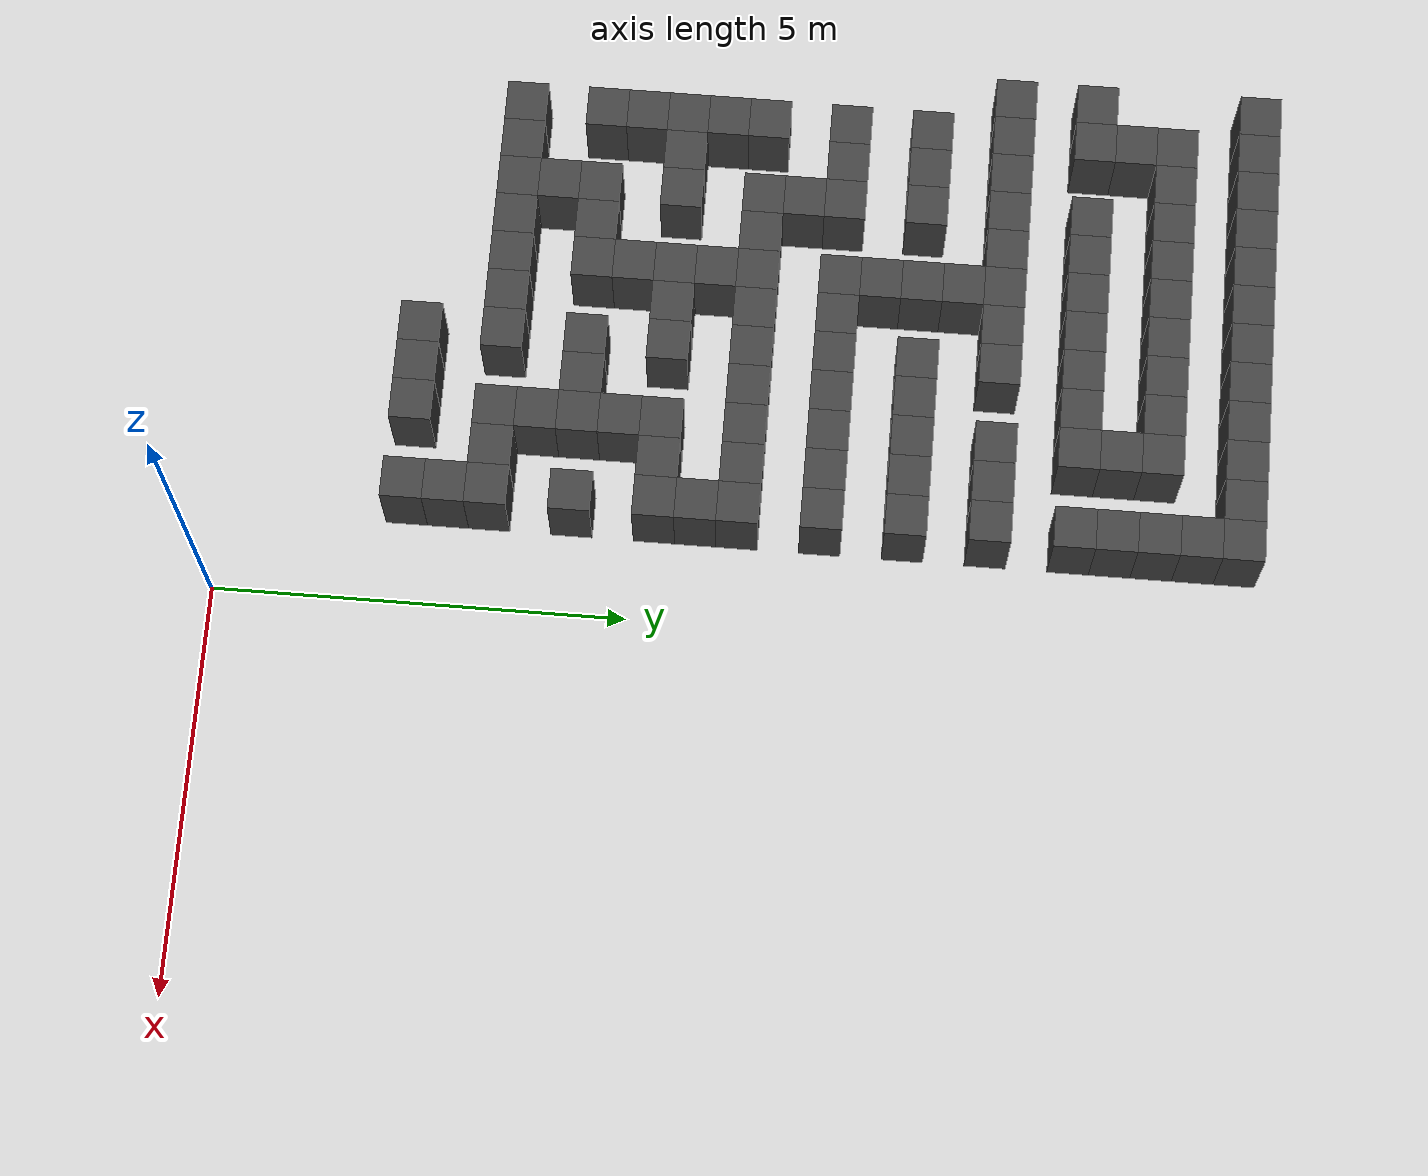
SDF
<sdf version="1.7">
 <world name="map_18914">
  <model name="ground_plane">
   <static>true</static>
   <link name="link">
    <collision name="collision">
     <geometry><plane><normal>0 0 1</normal><size>200 200</size></plane></geometry>
    </collision>
    <visual name="visual">
     <geometry><plane><normal>0 0 1</normal><size>200 200</size></plane></geometry>
     <material><ambient>0.8 0.8 0.8 1</ambient><diffuse>0.8 0.8 0.8 1</diffuse></material>
    </visual>
   </link>
  </model>
  <model name="maze_environment">
   <static>true</static>
   <link name="wall_11">
    <pose>-6.750 12.250 0.500 0 0 0</pose>
    <collision name="col"><geometry><box><size>0.5 0.5 1.0</size></box></geometry></collision>
    <visual name="vis">
     <geometry><box><size>0.5 0.5 1.0</size></box></geometry>
     <material><ambient>0.15 0.15 0.15 1</ambient><diffuse>0.25 0.25 0.25 1</diffuse></material>
    </visual>
   </link>
   <link name="wall_12">
    <pose>-6.250 12.250 0.500 0 0 0</pose>
    <collision name="col"><geometry><box><size>0.5 0.5 1.0</size></box></geometry></collision>
    <visual name="vis">
     <geometry><box><size>0.5 0.5 1.0</size></box></geometry>
     <material><ambient>0.15 0.15 0.15 1</ambient><diffuse>0.25 0.25 0.25 1</diffuse></material>
    </visual>
   </link>
   <link name="wall_13">
    <pose>-5.750 12.250 0.500 0 0 0</pose>
    <collision name="col"><geometry><box><size>0.5 0.5 1.0</size></box></geometry></collision>
    <visual name="vis">
     <geometry><box><size>0.5 0.5 1.0</size></box></geometry>
     <material><ambient>0.15 0.15 0.15 1</ambient><diffuse>0.25 0.25 0.25 1</diffuse></material>
    </visual>
   </link>
   <link name="wall_14">
    <pose>-5.250 12.250 0.500 0 0 0</pose>
    <collision name="col"><geometry><box><size>0.5 0.5 1.0</size></box></geometry></collision>
    <visual name="vis">
     <geometry><box><size>0.5 0.5 1.0</size></box></geometry>
     <material><ambient>0.15 0.15 0.15 1</ambient><diffuse>0.25 0.25 0.25 1</diffuse></material>
    </visual>
   </link>
   <link name="wall_15">
    <pose>-4.750 12.250 0.500 0 0 0</pose>
    <collision name="col"><geometry><box><size>0.5 0.5 1.0</size></box></geometry></collision>
    <visual name="vis">
     <geometry><box><size>0.5 0.5 1.0</size></box></geometry>
     <material><ambient>0.15 0.15 0.15 1</ambient><diffuse>0.25 0.25 0.25 1</diffuse></material>
    </visual>
   </link>
   <link name="wall_16">
    <pose>-4.250 12.250 0.500 0 0 0</pose>
    <collision name="col"><geometry><box><size>0.5 0.5 1.0</size></box></geometry></collision>
    <visual name="vis">
     <geometry><box><size>0.5 0.5 1.0</size></box></geometry>
     <material><ambient>0.15 0.15 0.15 1</ambient><diffuse>0.25 0.25 0.25 1</diffuse></material>
    </visual>
   </link>
   <link name="wall_17">
    <pose>-3.750 12.250 0.500 0 0 0</pose>
    <collision name="col"><geometry><box><size>0.5 0.5 1.0</size></box></geometry></collision>
    <visual name="vis">
     <geometry><box><size>0.5 0.5 1.0</size></box></geometry>
     <material><ambient>0.15 0.15 0.15 1</ambient><diffuse>0.25 0.25 0.25 1</diffuse></material>
    </visual>
   </link>
   <link name="wall_18">
    <pose>-3.250 12.250 0.500 0 0 0</pose>
    <collision name="col"><geometry><box><size>0.5 0.5 1.0</size></box></geometry></collision>
    <visual name="vis">
     <geometry><box><size>0.5 0.5 1.0</size></box></geometry>
     <material><ambient>0.15 0.15 0.15 1</ambient><diffuse>0.25 0.25 0.25 1</diffuse></material>
    </visual>
   </link>
   <link name="wall_19">
    <pose>-2.750 12.250 0.500 0 0 0</pose>
    <collision name="col"><geometry><box><size>0.5 0.5 1.0</size></box></geometry></collision>
    <visual name="vis">
     <geometry><box><size>0.5 0.5 1.0</size></box></geometry>
     <material><ambient>0.15 0.15 0.15 1</ambient><diffuse>0.25 0.25 0.25 1</diffuse></material>
    </visual>
   </link>
   <link name="wall_20">
    <pose>-2.250 12.250 0.500 0 0 0</pose>
    <collision name="col"><geometry><box><size>0.5 0.5 1.0</size></box></geometry></collision>
    <visual name="vis">
     <geometry><box><size>0.5 0.5 1.0</size></box></geometry>
     <material><ambient>0.15 0.15 0.15 1</ambient><diffuse>0.25 0.25 0.25 1</diffuse></material>
    </visual>
   </link>
   <link name="wall_21">
    <pose>-1.750 12.250 0.500 0 0 0</pose>
    <collision name="col"><geometry><box><size>0.5 0.5 1.0</size></box></geometry></collision>
    <visual name="vis">
     <geometry><box><size>0.5 0.5 1.0</size></box></geometry>
     <material><ambient>0.15 0.15 0.15 1</ambient><diffuse>0.25 0.25 0.25 1</diffuse></material>
    </visual>
   </link>
   <link name="wall_22">
    <pose>-1.250 12.250 0.500 0 0 0</pose>
    <collision name="col"><geometry><box><size>0.5 0.5 1.0</size></box></geometry></collision>
    <visual name="vis">
     <geometry><box><size>0.5 0.5 1.0</size></box></geometry>
     <material><ambient>0.15 0.15 0.15 1</ambient><diffuse>0.25 0.25 0.25 1</diffuse></material>
    </visual>
   </link>
   <link name="wall_52">
    <pose>-1.250 11.750 0.500 0 0 0</pose>
    <collision name="col"><geometry><box><size>0.5 0.5 1.0</size></box></geometry></collision>
    <visual name="vis">
     <geometry><box><size>0.5 0.5 1.0</size></box></geometry>
     <material><ambient>0.15 0.15 0.15 1</ambient><diffuse>0.25 0.25 0.25 1</diffuse></material>
    </visual>
   </link>
   <link name="wall_66">
    <pose>-6.250 11.250 0.500 0 0 0</pose>
    <collision name="col"><geometry><box><size>0.5 0.5 1.0</size></box></geometry></collision>
    <visual name="vis">
     <geometry><box><size>0.5 0.5 1.0</size></box></geometry>
     <material><ambient>0.15 0.15 0.15 1</ambient><diffuse>0.25 0.25 0.25 1</diffuse></material>
    </visual>
   </link>
   <link name="wall_67">
    <pose>-5.750 11.250 0.500 0 0 0</pose>
    <collision name="col"><geometry><box><size>0.5 0.5 1.0</size></box></geometry></collision>
    <visual name="vis">
     <geometry><box><size>0.5 0.5 1.0</size></box></geometry>
     <material><ambient>0.15 0.15 0.15 1</ambient><diffuse>0.25 0.25 0.25 1</diffuse></material>
    </visual>
   </link>
   <link name="wall_68">
    <pose>-5.250 11.250 0.500 0 0 0</pose>
    <collision name="col"><geometry><box><size>0.5 0.5 1.0</size></box></geometry></collision>
    <visual name="vis">
     <geometry><box><size>0.5 0.5 1.0</size></box></geometry>
     <material><ambient>0.15 0.15 0.15 1</ambient><diffuse>0.25 0.25 0.25 1</diffuse></material>
    </visual>
   </link>
   <link name="wall_69">
    <pose>-4.750 11.250 0.500 0 0 0</pose>
    <collision name="col"><geometry><box><size>0.5 0.5 1.0</size></box></geometry></collision>
    <visual name="vis">
     <geometry><box><size>0.5 0.5 1.0</size></box></geometry>
     <material><ambient>0.15 0.15 0.15 1</ambient><diffuse>0.25 0.25 0.25 1</diffuse></material>
    </visual>
   </link>
   <link name="wall_70">
    <pose>-4.250 11.250 0.500 0 0 0</pose>
    <collision name="col"><geometry><box><size>0.5 0.5 1.0</size></box></geometry></collision>
    <visual name="vis">
     <geometry><box><size>0.5 0.5 1.0</size></box></geometry>
     <material><ambient>0.15 0.15 0.15 1</ambient><diffuse>0.25 0.25 0.25 1</diffuse></material>
    </visual>
   </link>
   <link name="wall_71">
    <pose>-3.750 11.250 0.500 0 0 0</pose>
    <collision name="col"><geometry><box><size>0.5 0.5 1.0</size></box></geometry></collision>
    <visual name="vis">
     <geometry><box><size>0.5 0.5 1.0</size></box></geometry>
     <material><ambient>0.15 0.15 0.15 1</ambient><diffuse>0.25 0.25 0.25 1</diffuse></material>
    </visual>
   </link>
   <link name="wall_72">
    <pose>-3.250 11.250 0.500 0 0 0</pose>
    <collision name="col"><geometry><box><size>0.5 0.5 1.0</size></box></geometry></collision>
    <visual name="vis">
     <geometry><box><size>0.5 0.5 1.0</size></box></geometry>
     <material><ambient>0.15 0.15 0.15 1</ambient><diffuse>0.25 0.25 0.25 1</diffuse></material>
    </visual>
   </link>
   <link name="wall_73">
    <pose>-2.750 11.250 0.500 0 0 0</pose>
    <collision name="col"><geometry><box><size>0.5 0.5 1.0</size></box></geometry></collision>
    <visual name="vis">
     <geometry><box><size>0.5 0.5 1.0</size></box></geometry>
     <material><ambient>0.15 0.15 0.15 1</ambient><diffuse>0.25 0.25 0.25 1</diffuse></material>
    </visual>
   </link>
   <link name="wall_74">
    <pose>-2.250 11.250 0.500 0 0 0</pose>
    <collision name="col"><geometry><box><size>0.5 0.5 1.0</size></box></geometry></collision>
    <visual name="vis">
     <geometry><box><size>0.5 0.5 1.0</size></box></geometry>
     <material><ambient>0.15 0.15 0.15 1</ambient><diffuse>0.25 0.25 0.25 1</diffuse></material>
    </visual>
   </link>
   <link name="wall_75">
    <pose>-1.250 11.250 0.500 0 0 0</pose>
    <collision name="col"><geometry><box><size>0.5 0.5 1.0</size></box></geometry></collision>
    <visual name="vis">
     <geometry><box><size>0.5 0.5 1.0</size></box></geometry>
     <material><ambient>0.15 0.15 0.15 1</ambient><diffuse>0.25 0.25 0.25 1</diffuse></material>
    </visual>
   </link>
   <link name="wall_96">
    <pose>-6.250 10.750 0.500 0 0 0</pose>
    <collision name="col"><geometry><box><size>0.5 0.5 1.0</size></box></geometry></collision>
    <visual name="vis">
     <geometry><box><size>0.5 0.5 1.0</size></box></geometry>
     <material><ambient>0.15 0.15 0.15 1</ambient><diffuse>0.25 0.25 0.25 1</diffuse></material>
    </visual>
   </link>
   <link name="wall_97">
    <pose>-2.250 10.750 0.500 0 0 0</pose>
    <collision name="col"><geometry><box><size>0.5 0.5 1.0</size></box></geometry></collision>
    <visual name="vis">
     <geometry><box><size>0.5 0.5 1.0</size></box></geometry>
     <material><ambient>0.15 0.15 0.15 1</ambient><diffuse>0.25 0.25 0.25 1</diffuse></material>
    </visual>
   </link>
   <link name="wall_98">
    <pose>-1.250 10.750 0.500 0 0 0</pose>
    <collision name="col"><geometry><box><size>0.5 0.5 1.0</size></box></geometry></collision>
    <visual name="vis">
     <geometry><box><size>0.5 0.5 1.0</size></box></geometry>
     <material><ambient>0.15 0.15 0.15 1</ambient><diffuse>0.25 0.25 0.25 1</diffuse></material>
    </visual>
   </link>
   <link name="wall_119">
    <pose>-6.750 10.250 0.500 0 0 0</pose>
    <collision name="col"><geometry><box><size>0.5 0.5 1.0</size></box></geometry></collision>
    <visual name="vis">
     <geometry><box><size>0.5 0.5 1.0</size></box></geometry>
     <material><ambient>0.15 0.15 0.15 1</ambient><diffuse>0.25 0.25 0.25 1</diffuse></material>
    </visual>
   </link>
   <link name="wall_120">
    <pose>-6.250 10.250 0.500 0 0 0</pose>
    <collision name="col"><geometry><box><size>0.5 0.5 1.0</size></box></geometry></collision>
    <visual name="vis">
     <geometry><box><size>0.5 0.5 1.0</size></box></geometry>
     <material><ambient>0.15 0.15 0.15 1</ambient><diffuse>0.25 0.25 0.25 1</diffuse></material>
    </visual>
   </link>
   <link name="wall_121">
    <pose>-5.250 10.250 0.500 0 0 0</pose>
    <collision name="col"><geometry><box><size>0.5 0.5 1.0</size></box></geometry></collision>
    <visual name="vis">
     <geometry><box><size>0.5 0.5 1.0</size></box></geometry>
     <material><ambient>0.15 0.15 0.15 1</ambient><diffuse>0.25 0.25 0.25 1</diffuse></material>
    </visual>
   </link>
   <link name="wall_122">
    <pose>-4.750 10.250 0.500 0 0 0</pose>
    <collision name="col"><geometry><box><size>0.5 0.5 1.0</size></box></geometry></collision>
    <visual name="vis">
     <geometry><box><size>0.5 0.5 1.0</size></box></geometry>
     <material><ambient>0.15 0.15 0.15 1</ambient><diffuse>0.25 0.25 0.25 1</diffuse></material>
    </visual>
   </link>
   <link name="wall_123">
    <pose>-4.250 10.250 0.500 0 0 0</pose>
    <collision name="col"><geometry><box><size>0.5 0.5 1.0</size></box></geometry></collision>
    <visual name="vis">
     <geometry><box><size>0.5 0.5 1.0</size></box></geometry>
     <material><ambient>0.15 0.15 0.15 1</ambient><diffuse>0.25 0.25 0.25 1</diffuse></material>
    </visual>
   </link>
   <link name="wall_124">
    <pose>-3.750 10.250 0.500 0 0 0</pose>
    <collision name="col"><geometry><box><size>0.5 0.5 1.0</size></box></geometry></collision>
    <visual name="vis">
     <geometry><box><size>0.5 0.5 1.0</size></box></geometry>
     <material><ambient>0.15 0.15 0.15 1</ambient><diffuse>0.25 0.25 0.25 1</diffuse></material>
    </visual>
   </link>
   <link name="wall_125">
    <pose>-3.250 10.250 0.500 0 0 0</pose>
    <collision name="col"><geometry><box><size>0.5 0.5 1.0</size></box></geometry></collision>
    <visual name="vis">
     <geometry><box><size>0.5 0.5 1.0</size></box></geometry>
     <material><ambient>0.15 0.15 0.15 1</ambient><diffuse>0.25 0.25 0.25 1</diffuse></material>
    </visual>
   </link>
   <link name="wall_126">
    <pose>-2.750 10.250 0.500 0 0 0</pose>
    <collision name="col"><geometry><box><size>0.5 0.5 1.0</size></box></geometry></collision>
    <visual name="vis">
     <geometry><box><size>0.5 0.5 1.0</size></box></geometry>
     <material><ambient>0.15 0.15 0.15 1</ambient><diffuse>0.25 0.25 0.25 1</diffuse></material>
    </visual>
   </link>
   <link name="wall_127">
    <pose>-2.250 10.250 0.500 0 0 0</pose>
    <collision name="col"><geometry><box><size>0.5 0.5 1.0</size></box></geometry></collision>
    <visual name="vis">
     <geometry><box><size>0.5 0.5 1.0</size></box></geometry>
     <material><ambient>0.15 0.15 0.15 1</ambient><diffuse>0.25 0.25 0.25 1</diffuse></material>
    </visual>
   </link>
   <link name="wall_128">
    <pose>-1.250 10.250 0.500 0 0 0</pose>
    <collision name="col"><geometry><box><size>0.5 0.5 1.0</size></box></geometry></collision>
    <visual name="vis">
     <geometry><box><size>0.5 0.5 1.0</size></box></geometry>
     <material><ambient>0.15 0.15 0.15 1</ambient><diffuse>0.25 0.25 0.25 1</diffuse></material>
    </visual>
   </link>
   <link name="wall_166">
    <pose>-6.750 9.250 0.500 0 0 0</pose>
    <collision name="col"><geometry><box><size>0.5 0.5 1.0</size></box></geometry></collision>
    <visual name="vis">
     <geometry><box><size>0.5 0.5 1.0</size></box></geometry>
     <material><ambient>0.15 0.15 0.15 1</ambient><diffuse>0.25 0.25 0.25 1</diffuse></material>
    </visual>
   </link>
   <link name="wall_167">
    <pose>-6.250 9.250 0.500 0 0 0</pose>
    <collision name="col"><geometry><box><size>0.5 0.5 1.0</size></box></geometry></collision>
    <visual name="vis">
     <geometry><box><size>0.5 0.5 1.0</size></box></geometry>
     <material><ambient>0.15 0.15 0.15 1</ambient><diffuse>0.25 0.25 0.25 1</diffuse></material>
    </visual>
   </link>
   <link name="wall_168">
    <pose>-5.750 9.250 0.500 0 0 0</pose>
    <collision name="col"><geometry><box><size>0.5 0.5 1.0</size></box></geometry></collision>
    <visual name="vis">
     <geometry><box><size>0.5 0.5 1.0</size></box></geometry>
     <material><ambient>0.15 0.15 0.15 1</ambient><diffuse>0.25 0.25 0.25 1</diffuse></material>
    </visual>
   </link>
   <link name="wall_169">
    <pose>-5.250 9.250 0.500 0 0 0</pose>
    <collision name="col"><geometry><box><size>0.5 0.5 1.0</size></box></geometry></collision>
    <visual name="vis">
     <geometry><box><size>0.5 0.5 1.0</size></box></geometry>
     <material><ambient>0.15 0.15 0.15 1</ambient><diffuse>0.25 0.25 0.25 1</diffuse></material>
    </visual>
   </link>
   <link name="wall_170">
    <pose>-4.750 9.250 0.500 0 0 0</pose>
    <collision name="col"><geometry><box><size>0.5 0.5 1.0</size></box></geometry></collision>
    <visual name="vis">
     <geometry><box><size>0.5 0.5 1.0</size></box></geometry>
     <material><ambient>0.15 0.15 0.15 1</ambient><diffuse>0.25 0.25 0.25 1</diffuse></material>
    </visual>
   </link>
   <link name="wall_171">
    <pose>-4.250 9.250 0.500 0 0 0</pose>
    <collision name="col"><geometry><box><size>0.5 0.5 1.0</size></box></geometry></collision>
    <visual name="vis">
     <geometry><box><size>0.5 0.5 1.0</size></box></geometry>
     <material><ambient>0.15 0.15 0.15 1</ambient><diffuse>0.25 0.25 0.25 1</diffuse></material>
    </visual>
   </link>
   <link name="wall_172">
    <pose>-3.750 9.250 0.500 0 0 0</pose>
    <collision name="col"><geometry><box><size>0.5 0.5 1.0</size></box></geometry></collision>
    <visual name="vis">
     <geometry><box><size>0.5 0.5 1.0</size></box></geometry>
     <material><ambient>0.15 0.15 0.15 1</ambient><diffuse>0.25 0.25 0.25 1</diffuse></material>
    </visual>
   </link>
   <link name="wall_173">
    <pose>-3.250 9.250 0.500 0 0 0</pose>
    <collision name="col"><geometry><box><size>0.5 0.5 1.0</size></box></geometry></collision>
    <visual name="vis">
     <geometry><box><size>0.5 0.5 1.0</size></box></geometry>
     <material><ambient>0.15 0.15 0.15 1</ambient><diffuse>0.25 0.25 0.25 1</diffuse></material>
    </visual>
   </link>
   <link name="wall_174">
    <pose>-2.250 9.250 0.500 0 0 0</pose>
    <collision name="col"><geometry><box><size>0.5 0.5 1.0</size></box></geometry></collision>
    <visual name="vis">
     <geometry><box><size>0.5 0.5 1.0</size></box></geometry>
     <material><ambient>0.15 0.15 0.15 1</ambient><diffuse>0.25 0.25 0.25 1</diffuse></material>
    </visual>
   </link>
   <link name="wall_175">
    <pose>-1.750 9.250 0.500 0 0 0</pose>
    <collision name="col"><geometry><box><size>0.5 0.5 1.0</size></box></geometry></collision>
    <visual name="vis">
     <geometry><box><size>0.5 0.5 1.0</size></box></geometry>
     <material><ambient>0.15 0.15 0.15 1</ambient><diffuse>0.25 0.25 0.25 1</diffuse></material>
    </visual>
   </link>
   <link name="wall_176">
    <pose>-1.250 9.250 0.500 0 0 0</pose>
    <collision name="col"><geometry><box><size>0.5 0.5 1.0</size></box></geometry></collision>
    <visual name="vis">
     <geometry><box><size>0.5 0.5 1.0</size></box></geometry>
     <material><ambient>0.15 0.15 0.15 1</ambient><diffuse>0.25 0.25 0.25 1</diffuse></material>
    </visual>
   </link>
   <link name="wall_201">
    <pose>-4.250 8.750 0.500 0 0 0</pose>
    <collision name="col"><geometry><box><size>0.5 0.5 1.0</size></box></geometry></collision>
    <visual name="vis">
     <geometry><box><size>0.5 0.5 1.0</size></box></geometry>
     <material><ambient>0.15 0.15 0.15 1</ambient><diffuse>0.25 0.25 0.25 1</diffuse></material>
    </visual>
   </link>
   <link name="wall_218">
    <pose>-6.250 8.250 0.500 0 0 0</pose>
    <collision name="col"><geometry><box><size>0.5 0.5 1.0</size></box></geometry></collision>
    <visual name="vis">
     <geometry><box><size>0.5 0.5 1.0</size></box></geometry>
     <material><ambient>0.15 0.15 0.15 1</ambient><diffuse>0.25 0.25 0.25 1</diffuse></material>
    </visual>
   </link>
   <link name="wall_219">
    <pose>-5.750 8.250 0.500 0 0 0</pose>
    <collision name="col"><geometry><box><size>0.5 0.5 1.0</size></box></geometry></collision>
    <visual name="vis">
     <geometry><box><size>0.5 0.5 1.0</size></box></geometry>
     <material><ambient>0.15 0.15 0.15 1</ambient><diffuse>0.25 0.25 0.25 1</diffuse></material>
    </visual>
   </link>
   <link name="wall_220">
    <pose>-5.250 8.250 0.500 0 0 0</pose>
    <collision name="col"><geometry><box><size>0.5 0.5 1.0</size></box></geometry></collision>
    <visual name="vis">
     <geometry><box><size>0.5 0.5 1.0</size></box></geometry>
     <material><ambient>0.15 0.15 0.15 1</ambient><diffuse>0.25 0.25 0.25 1</diffuse></material>
    </visual>
   </link>
   <link name="wall_221">
    <pose>-4.250 8.250 0.500 0 0 0</pose>
    <collision name="col"><geometry><box><size>0.5 0.5 1.0</size></box></geometry></collision>
    <visual name="vis">
     <geometry><box><size>0.5 0.5 1.0</size></box></geometry>
     <material><ambient>0.15 0.15 0.15 1</ambient><diffuse>0.25 0.25 0.25 1</diffuse></material>
    </visual>
   </link>
   <link name="wall_222">
    <pose>-3.250 8.250 0.500 0 0 0</pose>
    <collision name="col"><geometry><box><size>0.5 0.5 1.0</size></box></geometry></collision>
    <visual name="vis">
     <geometry><box><size>0.5 0.5 1.0</size></box></geometry>
     <material><ambient>0.15 0.15 0.15 1</ambient><diffuse>0.25 0.25 0.25 1</diffuse></material>
    </visual>
   </link>
   <link name="wall_223">
    <pose>-2.750 8.250 0.500 0 0 0</pose>
    <collision name="col"><geometry><box><size>0.5 0.5 1.0</size></box></geometry></collision>
    <visual name="vis">
     <geometry><box><size>0.5 0.5 1.0</size></box></geometry>
     <material><ambient>0.15 0.15 0.15 1</ambient><diffuse>0.25 0.25 0.25 1</diffuse></material>
    </visual>
   </link>
   <link name="wall_224">
    <pose>-2.250 8.250 0.500 0 0 0</pose>
    <collision name="col"><geometry><box><size>0.5 0.5 1.0</size></box></geometry></collision>
    <visual name="vis">
     <geometry><box><size>0.5 0.5 1.0</size></box></geometry>
     <material><ambient>0.15 0.15 0.15 1</ambient><diffuse>0.25 0.25 0.25 1</diffuse></material>
    </visual>
   </link>
   <link name="wall_225">
    <pose>-1.750 8.250 0.500 0 0 0</pose>
    <collision name="col"><geometry><box><size>0.5 0.5 1.0</size></box></geometry></collision>
    <visual name="vis">
     <geometry><box><size>0.5 0.5 1.0</size></box></geometry>
     <material><ambient>0.15 0.15 0.15 1</ambient><diffuse>0.25 0.25 0.25 1</diffuse></material>
    </visual>
   </link>
   <link name="wall_226">
    <pose>-1.250 8.250 0.500 0 0 0</pose>
    <collision name="col"><geometry><box><size>0.5 0.5 1.0</size></box></geometry></collision>
    <visual name="vis">
     <geometry><box><size>0.5 0.5 1.0</size></box></geometry>
     <material><ambient>0.15 0.15 0.15 1</ambient><diffuse>0.25 0.25 0.25 1</diffuse></material>
    </visual>
   </link>
   <link name="wall_254">
    <pose>-4.250 7.750 0.500 0 0 0</pose>
    <collision name="col"><geometry><box><size>0.5 0.5 1.0</size></box></geometry></collision>
    <visual name="vis">
     <geometry><box><size>0.5 0.5 1.0</size></box></geometry>
     <material><ambient>0.15 0.15 0.15 1</ambient><diffuse>0.25 0.25 0.25 1</diffuse></material>
    </visual>
   </link>
   <link name="wall_267">
    <pose>-6.250 7.250 0.500 0 0 0</pose>
    <collision name="col"><geometry><box><size>0.5 0.5 1.0</size></box></geometry></collision>
    <visual name="vis">
     <geometry><box><size>0.5 0.5 1.0</size></box></geometry>
     <material><ambient>0.15 0.15 0.15 1</ambient><diffuse>0.25 0.25 0.25 1</diffuse></material>
    </visual>
   </link>
   <link name="wall_268">
    <pose>-5.750 7.250 0.500 0 0 0</pose>
    <collision name="col"><geometry><box><size>0.5 0.5 1.0</size></box></geometry></collision>
    <visual name="vis">
     <geometry><box><size>0.5 0.5 1.0</size></box></geometry>
     <material><ambient>0.15 0.15 0.15 1</ambient><diffuse>0.25 0.25 0.25 1</diffuse></material>
    </visual>
   </link>
   <link name="wall_269">
    <pose>-5.250 7.250 0.500 0 0 0</pose>
    <collision name="col"><geometry><box><size>0.5 0.5 1.0</size></box></geometry></collision>
    <visual name="vis">
     <geometry><box><size>0.5 0.5 1.0</size></box></geometry>
     <material><ambient>0.15 0.15 0.15 1</ambient><diffuse>0.25 0.25 0.25 1</diffuse></material>
    </visual>
   </link>
   <link name="wall_270">
    <pose>-4.250 7.250 0.500 0 0 0</pose>
    <collision name="col"><geometry><box><size>0.5 0.5 1.0</size></box></geometry></collision>
    <visual name="vis">
     <geometry><box><size>0.5 0.5 1.0</size></box></geometry>
     <material><ambient>0.15 0.15 0.15 1</ambient><diffuse>0.25 0.25 0.25 1</diffuse></material>
    </visual>
   </link>
   <link name="wall_271">
    <pose>-3.750 7.250 0.500 0 0 0</pose>
    <collision name="col"><geometry><box><size>0.5 0.5 1.0</size></box></geometry></collision>
    <visual name="vis">
     <geometry><box><size>0.5 0.5 1.0</size></box></geometry>
     <material><ambient>0.15 0.15 0.15 1</ambient><diffuse>0.25 0.25 0.25 1</diffuse></material>
    </visual>
   </link>
   <link name="wall_272">
    <pose>-3.250 7.250 0.500 0 0 0</pose>
    <collision name="col"><geometry><box><size>0.5 0.5 1.0</size></box></geometry></collision>
    <visual name="vis">
     <geometry><box><size>0.5 0.5 1.0</size></box></geometry>
     <material><ambient>0.15 0.15 0.15 1</ambient><diffuse>0.25 0.25 0.25 1</diffuse></material>
    </visual>
   </link>
   <link name="wall_273">
    <pose>-2.750 7.250 0.500 0 0 0</pose>
    <collision name="col"><geometry><box><size>0.5 0.5 1.0</size></box></geometry></collision>
    <visual name="vis">
     <geometry><box><size>0.5 0.5 1.0</size></box></geometry>
     <material><ambient>0.15 0.15 0.15 1</ambient><diffuse>0.25 0.25 0.25 1</diffuse></material>
    </visual>
   </link>
   <link name="wall_274">
    <pose>-2.250 7.250 0.500 0 0 0</pose>
    <collision name="col"><geometry><box><size>0.5 0.5 1.0</size></box></geometry></collision>
    <visual name="vis">
     <geometry><box><size>0.5 0.5 1.0</size></box></geometry>
     <material><ambient>0.15 0.15 0.15 1</ambient><diffuse>0.25 0.25 0.25 1</diffuse></material>
    </visual>
   </link>
   <link name="wall_275">
    <pose>-1.750 7.250 0.500 0 0 0</pose>
    <collision name="col"><geometry><box><size>0.5 0.5 1.0</size></box></geometry></collision>
    <visual name="vis">
     <geometry><box><size>0.5 0.5 1.0</size></box></geometry>
     <material><ambient>0.15 0.15 0.15 1</ambient><diffuse>0.25 0.25 0.25 1</diffuse></material>
    </visual>
   </link>
   <link name="wall_276">
    <pose>-1.250 7.250 0.500 0 0 0</pose>
    <collision name="col"><geometry><box><size>0.5 0.5 1.0</size></box></geometry></collision>
    <visual name="vis">
     <geometry><box><size>0.5 0.5 1.0</size></box></geometry>
     <material><ambient>0.15 0.15 0.15 1</ambient><diffuse>0.25 0.25 0.25 1</diffuse></material>
    </visual>
   </link>
   <link name="wall_304">
    <pose>-5.250 6.750 0.500 0 0 0</pose>
    <collision name="col"><geometry><box><size>0.5 0.5 1.0</size></box></geometry></collision>
    <visual name="vis">
     <geometry><box><size>0.5 0.5 1.0</size></box></geometry>
     <material><ambient>0.15 0.15 0.15 1</ambient><diffuse>0.25 0.25 0.25 1</diffuse></material>
    </visual>
   </link>
   <link name="wall_320">
    <pose>-6.250 6.250 0.500 0 0 0</pose>
    <collision name="col"><geometry><box><size>0.5 0.5 1.0</size></box></geometry></collision>
    <visual name="vis">
     <geometry><box><size>0.5 0.5 1.0</size></box></geometry>
     <material><ambient>0.15 0.15 0.15 1</ambient><diffuse>0.25 0.25 0.25 1</diffuse></material>
    </visual>
   </link>
   <link name="wall_321">
    <pose>-5.250 6.250 0.500 0 0 0</pose>
    <collision name="col"><geometry><box><size>0.5 0.5 1.0</size></box></geometry></collision>
    <visual name="vis">
     <geometry><box><size>0.5 0.5 1.0</size></box></geometry>
     <material><ambient>0.15 0.15 0.15 1</ambient><diffuse>0.25 0.25 0.25 1</diffuse></material>
    </visual>
   </link>
   <link name="wall_322">
    <pose>-4.750 6.250 0.500 0 0 0</pose>
    <collision name="col"><geometry><box><size>0.5 0.5 1.0</size></box></geometry></collision>
    <visual name="vis">
     <geometry><box><size>0.5 0.5 1.0</size></box></geometry>
     <material><ambient>0.15 0.15 0.15 1</ambient><diffuse>0.25 0.25 0.25 1</diffuse></material>
    </visual>
   </link>
   <link name="wall_323">
    <pose>-4.250 6.250 0.500 0 0 0</pose>
    <collision name="col"><geometry><box><size>0.5 0.5 1.0</size></box></geometry></collision>
    <visual name="vis">
     <geometry><box><size>0.5 0.5 1.0</size></box></geometry>
     <material><ambient>0.15 0.15 0.15 1</ambient><diffuse>0.25 0.25 0.25 1</diffuse></material>
    </visual>
   </link>
   <link name="wall_324">
    <pose>-3.750 6.250 0.500 0 0 0</pose>
    <collision name="col"><geometry><box><size>0.5 0.5 1.0</size></box></geometry></collision>
    <visual name="vis">
     <geometry><box><size>0.5 0.5 1.0</size></box></geometry>
     <material><ambient>0.15 0.15 0.15 1</ambient><diffuse>0.25 0.25 0.25 1</diffuse></material>
    </visual>
   </link>
   <link name="wall_325">
    <pose>-3.250 6.250 0.500 0 0 0</pose>
    <collision name="col"><geometry><box><size>0.5 0.5 1.0</size></box></geometry></collision>
    <visual name="vis">
     <geometry><box><size>0.5 0.5 1.0</size></box></geometry>
     <material><ambient>0.15 0.15 0.15 1</ambient><diffuse>0.25 0.25 0.25 1</diffuse></material>
    </visual>
   </link>
   <link name="wall_326">
    <pose>-2.750 6.250 0.500 0 0 0</pose>
    <collision name="col"><geometry><box><size>0.5 0.5 1.0</size></box></geometry></collision>
    <visual name="vis">
     <geometry><box><size>0.5 0.5 1.0</size></box></geometry>
     <material><ambient>0.15 0.15 0.15 1</ambient><diffuse>0.25 0.25 0.25 1</diffuse></material>
    </visual>
   </link>
   <link name="wall_327">
    <pose>-2.250 6.250 0.500 0 0 0</pose>
    <collision name="col"><geometry><box><size>0.5 0.5 1.0</size></box></geometry></collision>
    <visual name="vis">
     <geometry><box><size>0.5 0.5 1.0</size></box></geometry>
     <material><ambient>0.15 0.15 0.15 1</ambient><diffuse>0.25 0.25 0.25 1</diffuse></material>
    </visual>
   </link>
   <link name="wall_328">
    <pose>-1.750 6.250 0.500 0 0 0</pose>
    <collision name="col"><geometry><box><size>0.5 0.5 1.0</size></box></geometry></collision>
    <visual name="vis">
     <geometry><box><size>0.5 0.5 1.0</size></box></geometry>
     <material><ambient>0.15 0.15 0.15 1</ambient><diffuse>0.25 0.25 0.25 1</diffuse></material>
    </visual>
   </link>
   <link name="wall_329">
    <pose>-1.250 6.250 0.500 0 0 0</pose>
    <collision name="col"><geometry><box><size>0.5 0.5 1.0</size></box></geometry></collision>
    <visual name="vis">
     <geometry><box><size>0.5 0.5 1.0</size></box></geometry>
     <material><ambient>0.15 0.15 0.15 1</ambient><diffuse>0.25 0.25 0.25 1</diffuse></material>
    </visual>
   </link>
   <link name="wall_352">
    <pose>-6.250 5.750 0.500 0 0 0</pose>
    <collision name="col"><geometry><box><size>0.5 0.5 1.0</size></box></geometry></collision>
    <visual name="vis">
     <geometry><box><size>0.5 0.5 1.0</size></box></geometry>
     <material><ambient>0.15 0.15 0.15 1</ambient><diffuse>0.25 0.25 0.25 1</diffuse></material>
    </visual>
   </link>
   <link name="wall_353">
    <pose>-4.250 5.750 0.500 0 0 0</pose>
    <collision name="col"><geometry><box><size>0.5 0.5 1.0</size></box></geometry></collision>
    <visual name="vis">
     <geometry><box><size>0.5 0.5 1.0</size></box></geometry>
     <material><ambient>0.15 0.15 0.15 1</ambient><diffuse>0.25 0.25 0.25 1</diffuse></material>
    </visual>
   </link>
   <link name="wall_354">
    <pose>-1.250 5.750 0.500 0 0 0</pose>
    <collision name="col"><geometry><box><size>0.5 0.5 1.0</size></box></geometry></collision>
    <visual name="vis">
     <geometry><box><size>0.5 0.5 1.0</size></box></geometry>
     <material><ambient>0.15 0.15 0.15 1</ambient><diffuse>0.25 0.25 0.25 1</diffuse></material>
    </visual>
   </link>
   <link name="wall_371">
    <pose>-6.250 5.250 0.500 0 0 0</pose>
    <collision name="col"><geometry><box><size>0.5 0.5 1.0</size></box></geometry></collision>
    <visual name="vis">
     <geometry><box><size>0.5 0.5 1.0</size></box></geometry>
     <material><ambient>0.15 0.15 0.15 1</ambient><diffuse>0.25 0.25 0.25 1</diffuse></material>
    </visual>
   </link>
   <link name="wall_372">
    <pose>-5.750 5.250 0.500 0 0 0</pose>
    <collision name="col"><geometry><box><size>0.5 0.5 1.0</size></box></geometry></collision>
    <visual name="vis">
     <geometry><box><size>0.5 0.5 1.0</size></box></geometry>
     <material><ambient>0.15 0.15 0.15 1</ambient><diffuse>0.25 0.25 0.25 1</diffuse></material>
    </visual>
   </link>
   <link name="wall_373">
    <pose>-5.250 5.250 0.500 0 0 0</pose>
    <collision name="col"><geometry><box><size>0.5 0.5 1.0</size></box></geometry></collision>
    <visual name="vis">
     <geometry><box><size>0.5 0.5 1.0</size></box></geometry>
     <material><ambient>0.15 0.15 0.15 1</ambient><diffuse>0.25 0.25 0.25 1</diffuse></material>
    </visual>
   </link>
   <link name="wall_374">
    <pose>-4.250 5.250 0.500 0 0 0</pose>
    <collision name="col"><geometry><box><size>0.5 0.5 1.0</size></box></geometry></collision>
    <visual name="vis">
     <geometry><box><size>0.5 0.5 1.0</size></box></geometry>
     <material><ambient>0.15 0.15 0.15 1</ambient><diffuse>0.25 0.25 0.25 1</diffuse></material>
    </visual>
   </link>
   <link name="wall_375">
    <pose>-3.750 5.250 0.500 0 0 0</pose>
    <collision name="col"><geometry><box><size>0.5 0.5 1.0</size></box></geometry></collision>
    <visual name="vis">
     <geometry><box><size>0.5 0.5 1.0</size></box></geometry>
     <material><ambient>0.15 0.15 0.15 1</ambient><diffuse>0.25 0.25 0.25 1</diffuse></material>
    </visual>
   </link>
   <link name="wall_376">
    <pose>-3.250 5.250 0.500 0 0 0</pose>
    <collision name="col"><geometry><box><size>0.5 0.5 1.0</size></box></geometry></collision>
    <visual name="vis">
     <geometry><box><size>0.5 0.5 1.0</size></box></geometry>
     <material><ambient>0.15 0.15 0.15 1</ambient><diffuse>0.25 0.25 0.25 1</diffuse></material>
    </visual>
   </link>
   <link name="wall_377">
    <pose>-2.250 5.250 0.500 0 0 0</pose>
    <collision name="col"><geometry><box><size>0.5 0.5 1.0</size></box></geometry></collision>
    <visual name="vis">
     <geometry><box><size>0.5 0.5 1.0</size></box></geometry>
     <material><ambient>0.15 0.15 0.15 1</ambient><diffuse>0.25 0.25 0.25 1</diffuse></material>
    </visual>
   </link>
   <link name="wall_378">
    <pose>-1.750 5.250 0.500 0 0 0</pose>
    <collision name="col"><geometry><box><size>0.5 0.5 1.0</size></box></geometry></collision>
    <visual name="vis">
     <geometry><box><size>0.5 0.5 1.0</size></box></geometry>
     <material><ambient>0.15 0.15 0.15 1</ambient><diffuse>0.25 0.25 0.25 1</diffuse></material>
    </visual>
   </link>
   <link name="wall_379">
    <pose>-1.250 5.250 0.500 0 0 0</pose>
    <collision name="col"><geometry><box><size>0.5 0.5 1.0</size></box></geometry></collision>
    <visual name="vis">
     <geometry><box><size>0.5 0.5 1.0</size></box></geometry>
     <material><ambient>0.15 0.15 0.15 1</ambient><diffuse>0.25 0.25 0.25 1</diffuse></material>
    </visual>
   </link>
   <link name="wall_405">
    <pose>-6.250 4.750 0.500 0 0 0</pose>
    <collision name="col"><geometry><box><size>0.5 0.5 1.0</size></box></geometry></collision>
    <visual name="vis">
     <geometry><box><size>0.5 0.5 1.0</size></box></geometry>
     <material><ambient>0.15 0.15 0.15 1</ambient><diffuse>0.25 0.25 0.25 1</diffuse></material>
    </visual>
   </link>
   <link name="wall_406">
    <pose>-4.250 4.750 0.500 0 0 0</pose>
    <collision name="col"><geometry><box><size>0.5 0.5 1.0</size></box></geometry></collision>
    <visual name="vis">
     <geometry><box><size>0.5 0.5 1.0</size></box></geometry>
     <material><ambient>0.15 0.15 0.15 1</ambient><diffuse>0.25 0.25 0.25 1</diffuse></material>
    </visual>
   </link>
   <link name="wall_407">
    <pose>-2.250 4.750 0.500 0 0 0</pose>
    <collision name="col"><geometry><box><size>0.5 0.5 1.0</size></box></geometry></collision>
    <visual name="vis">
     <geometry><box><size>0.5 0.5 1.0</size></box></geometry>
     <material><ambient>0.15 0.15 0.15 1</ambient><diffuse>0.25 0.25 0.25 1</diffuse></material>
    </visual>
   </link>
   <link name="wall_421">
    <pose>-6.250 4.250 0.500 0 0 0</pose>
    <collision name="col"><geometry><box><size>0.5 0.5 1.0</size></box></geometry></collision>
    <visual name="vis">
     <geometry><box><size>0.5 0.5 1.0</size></box></geometry>
     <material><ambient>0.15 0.15 0.15 1</ambient><diffuse>0.25 0.25 0.25 1</diffuse></material>
    </visual>
   </link>
   <link name="wall_422">
    <pose>-5.250 4.250 0.500 0 0 0</pose>
    <collision name="col"><geometry><box><size>0.5 0.5 1.0</size></box></geometry></collision>
    <visual name="vis">
     <geometry><box><size>0.5 0.5 1.0</size></box></geometry>
     <material><ambient>0.15 0.15 0.15 1</ambient><diffuse>0.25 0.25 0.25 1</diffuse></material>
    </visual>
   </link>
   <link name="wall_423">
    <pose>-4.750 4.250 0.500 0 0 0</pose>
    <collision name="col"><geometry><box><size>0.5 0.5 1.0</size></box></geometry></collision>
    <visual name="vis">
     <geometry><box><size>0.5 0.5 1.0</size></box></geometry>
     <material><ambient>0.15 0.15 0.15 1</ambient><diffuse>0.25 0.25 0.25 1</diffuse></material>
    </visual>
   </link>
   <link name="wall_424">
    <pose>-4.250 4.250 0.500 0 0 0</pose>
    <collision name="col"><geometry><box><size>0.5 0.5 1.0</size></box></geometry></collision>
    <visual name="vis">
     <geometry><box><size>0.5 0.5 1.0</size></box></geometry>
     <material><ambient>0.15 0.15 0.15 1</ambient><diffuse>0.25 0.25 0.25 1</diffuse></material>
    </visual>
   </link>
   <link name="wall_425">
    <pose>-3.250 4.250 0.500 0 0 0</pose>
    <collision name="col"><geometry><box><size>0.5 0.5 1.0</size></box></geometry></collision>
    <visual name="vis">
     <geometry><box><size>0.5 0.5 1.0</size></box></geometry>
     <material><ambient>0.15 0.15 0.15 1</ambient><diffuse>0.25 0.25 0.25 1</diffuse></material>
    </visual>
   </link>
   <link name="wall_426">
    <pose>-2.750 4.250 0.500 0 0 0</pose>
    <collision name="col"><geometry><box><size>0.5 0.5 1.0</size></box></geometry></collision>
    <visual name="vis">
     <geometry><box><size>0.5 0.5 1.0</size></box></geometry>
     <material><ambient>0.15 0.15 0.15 1</ambient><diffuse>0.25 0.25 0.25 1</diffuse></material>
    </visual>
   </link>
   <link name="wall_427">
    <pose>-2.250 4.250 0.500 0 0 0</pose>
    <collision name="col"><geometry><box><size>0.5 0.5 1.0</size></box></geometry></collision>
    <visual name="vis">
     <geometry><box><size>0.5 0.5 1.0</size></box></geometry>
     <material><ambient>0.15 0.15 0.15 1</ambient><diffuse>0.25 0.25 0.25 1</diffuse></material>
    </visual>
   </link>
   <link name="wall_428">
    <pose>-1.250 4.250 0.500 0 0 0</pose>
    <collision name="col"><geometry><box><size>0.5 0.5 1.0</size></box></geometry></collision>
    <visual name="vis">
     <geometry><box><size>0.5 0.5 1.0</size></box></geometry>
     <material><ambient>0.15 0.15 0.15 1</ambient><diffuse>0.25 0.25 0.25 1</diffuse></material>
    </visual>
   </link>
   <link name="wall_455">
    <pose>-5.250 3.750 0.500 0 0 0</pose>
    <collision name="col"><geometry><box><size>0.5 0.5 1.0</size></box></geometry></collision>
    <visual name="vis">
     <geometry><box><size>0.5 0.5 1.0</size></box></geometry>
     <material><ambient>0.15 0.15 0.15 1</ambient><diffuse>0.25 0.25 0.25 1</diffuse></material>
    </visual>
   </link>
   <link name="wall_456">
    <pose>-2.250 3.750 0.500 0 0 0</pose>
    <collision name="col"><geometry><box><size>0.5 0.5 1.0</size></box></geometry></collision>
    <visual name="vis">
     <geometry><box><size>0.5 0.5 1.0</size></box></geometry>
     <material><ambient>0.15 0.15 0.15 1</ambient><diffuse>0.25 0.25 0.25 1</diffuse></material>
    </visual>
   </link>
   <link name="wall_475">
    <pose>-6.250 3.250 0.500 0 0 0</pose>
    <collision name="col"><geometry><box><size>0.5 0.5 1.0</size></box></geometry></collision>
    <visual name="vis">
     <geometry><box><size>0.5 0.5 1.0</size></box></geometry>
     <material><ambient>0.15 0.15 0.15 1</ambient><diffuse>0.25 0.25 0.25 1</diffuse></material>
    </visual>
   </link>
   <link name="wall_476">
    <pose>-5.750 3.250 0.500 0 0 0</pose>
    <collision name="col"><geometry><box><size>0.5 0.5 1.0</size></box></geometry></collision>
    <visual name="vis">
     <geometry><box><size>0.5 0.5 1.0</size></box></geometry>
     <material><ambient>0.15 0.15 0.15 1</ambient><diffuse>0.25 0.25 0.25 1</diffuse></material>
    </visual>
   </link>
   <link name="wall_477">
    <pose>-5.250 3.250 0.500 0 0 0</pose>
    <collision name="col"><geometry><box><size>0.5 0.5 1.0</size></box></geometry></collision>
    <visual name="vis">
     <geometry><box><size>0.5 0.5 1.0</size></box></geometry>
     <material><ambient>0.15 0.15 0.15 1</ambient><diffuse>0.25 0.25 0.25 1</diffuse></material>
    </visual>
   </link>
   <link name="wall_478">
    <pose>-4.750 3.250 0.500 0 0 0</pose>
    <collision name="col"><geometry><box><size>0.5 0.5 1.0</size></box></geometry></collision>
    <visual name="vis">
     <geometry><box><size>0.5 0.5 1.0</size></box></geometry>
     <material><ambient>0.15 0.15 0.15 1</ambient><diffuse>0.25 0.25 0.25 1</diffuse></material>
    </visual>
   </link>
   <link name="wall_479">
    <pose>-4.250 3.250 0.500 0 0 0</pose>
    <collision name="col"><geometry><box><size>0.5 0.5 1.0</size></box></geometry></collision>
    <visual name="vis">
     <geometry><box><size>0.5 0.5 1.0</size></box></geometry>
     <material><ambient>0.15 0.15 0.15 1</ambient><diffuse>0.25 0.25 0.25 1</diffuse></material>
    </visual>
   </link>
   <link name="wall_480">
    <pose>-3.750 3.250 0.500 0 0 0</pose>
    <collision name="col"><geometry><box><size>0.5 0.5 1.0</size></box></geometry></collision>
    <visual name="vis">
     <geometry><box><size>0.5 0.5 1.0</size></box></geometry>
     <material><ambient>0.15 0.15 0.15 1</ambient><diffuse>0.25 0.25 0.25 1</diffuse></material>
    </visual>
   </link>
   <link name="wall_481">
    <pose>-3.250 3.250 0.500 0 0 0</pose>
    <collision name="col"><geometry><box><size>0.5 0.5 1.0</size></box></geometry></collision>
    <visual name="vis">
     <geometry><box><size>0.5 0.5 1.0</size></box></geometry>
     <material><ambient>0.15 0.15 0.15 1</ambient><diffuse>0.25 0.25 0.25 1</diffuse></material>
    </visual>
   </link>
   <link name="wall_482">
    <pose>-2.250 3.250 0.500 0 0 0</pose>
    <collision name="col"><geometry><box><size>0.5 0.5 1.0</size></box></geometry></collision>
    <visual name="vis">
     <geometry><box><size>0.5 0.5 1.0</size></box></geometry>
     <material><ambient>0.15 0.15 0.15 1</ambient><diffuse>0.25 0.25 0.25 1</diffuse></material>
    </visual>
   </link>
   <link name="wall_483">
    <pose>-1.750 3.250 0.500 0 0 0</pose>
    <collision name="col"><geometry><box><size>0.5 0.5 1.0</size></box></geometry></collision>
    <visual name="vis">
     <geometry><box><size>0.5 0.5 1.0</size></box></geometry>
     <material><ambient>0.15 0.15 0.15 1</ambient><diffuse>0.25 0.25 0.25 1</diffuse></material>
    </visual>
   </link>
   <link name="wall_484">
    <pose>-1.250 3.250 0.500 0 0 0</pose>
    <collision name="col"><geometry><box><size>0.5 0.5 1.0</size></box></geometry></collision>
    <visual name="vis">
     <geometry><box><size>0.5 0.5 1.0</size></box></geometry>
     <material><ambient>0.15 0.15 0.15 1</ambient><diffuse>0.25 0.25 0.25 1</diffuse></material>
    </visual>
   </link>
   <link name="wall_506">
    <pose>-1.250 2.750 0.500 0 0 0</pose>
    <collision name="col"><geometry><box><size>0.5 0.5 1.0</size></box></geometry></collision>
    <visual name="vis">
     <geometry><box><size>0.5 0.5 1.0</size></box></geometry>
     <material><ambient>0.15 0.15 0.15 1</ambient><diffuse>0.25 0.25 0.25 1</diffuse></material>
    </visual>
   </link>
   <link name="wall_529">
    <pose>-3.250 2.250 0.500 0 0 0</pose>
    <collision name="col"><geometry><box><size>0.5 0.5 1.0</size></box></geometry></collision>
    <visual name="vis">
     <geometry><box><size>0.5 0.5 1.0</size></box></geometry>
     <material><ambient>0.15 0.15 0.15 1</ambient><diffuse>0.25 0.25 0.25 1</diffuse></material>
    </visual>
   </link>
   <link name="wall_530">
    <pose>-2.750 2.250 0.500 0 0 0</pose>
    <collision name="col"><geometry><box><size>0.5 0.5 1.0</size></box></geometry></collision>
    <visual name="vis">
     <geometry><box><size>0.5 0.5 1.0</size></box></geometry>
     <material><ambient>0.15 0.15 0.15 1</ambient><diffuse>0.25 0.25 0.25 1</diffuse></material>
    </visual>
   </link>
   <link name="wall_531">
    <pose>-2.250 2.250 0.500 0 0 0</pose>
    <collision name="col"><geometry><box><size>0.5 0.5 1.0</size></box></geometry></collision>
    <visual name="vis">
     <geometry><box><size>0.5 0.5 1.0</size></box></geometry>
     <material><ambient>0.15 0.15 0.15 1</ambient><diffuse>0.25 0.25 0.25 1</diffuse></material>
    </visual>
   </link>
   <link name="wall_532">
    <pose>-1.250 2.250 0.500 0 0 0</pose>
    <collision name="col"><geometry><box><size>0.5 0.5 1.0</size></box></geometry></collision>
    <visual name="vis">
     <geometry><box><size>0.5 0.5 1.0</size></box></geometry>
     <material><ambient>0.15 0.15 0.15 1</ambient><diffuse>0.25 0.25 0.25 1</diffuse></material>
    </visual>
   </link>
  </model>
 </world>
</sdf>
